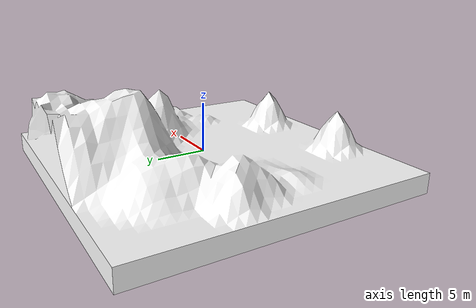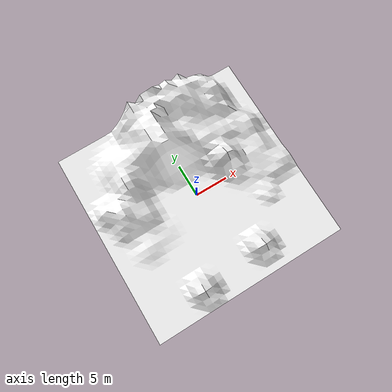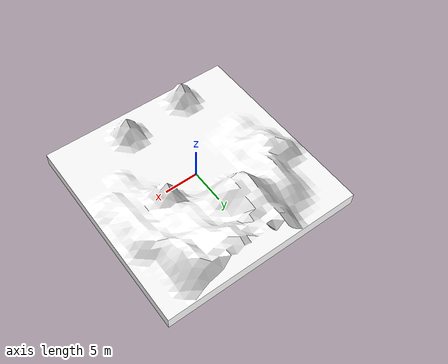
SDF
<?xml version="1.0"?>
<sdf version="1.4">
  <world name="default">
    <include>
      <uri>model://sun</uri>
    </include>
    <include>
      <uri>model://mymap</uri>
    </include>
  </world>
</sdf>

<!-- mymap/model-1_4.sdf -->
<sdf version="1.4">
  <model name="Mymap">
    <static>true</static>
    <link name="link">
      <pose>0 0 0 0 0 0</pose>
      <collision name="collision">
        <geometry>
          <mesh>
            <uri>model://mymap/meshes/mymap.dae</uri>
          </mesh>
        </geometry>
      </collision>
      <visual name="visual">
        <geometry>
          <mesh>
            <uri>model://mymap/meshes/mymap.dae</uri>
          </mesh>
        </geometry>
        <material>
          <script>
            <uri>model://mymap/materials/scripts</uri>
            <uri>model://mymap/materials/textures</uri>
            <name>Mymap/Image</name>
          </script>
        </material>
      </visual>
    </link>
  </model>
</sdf>
